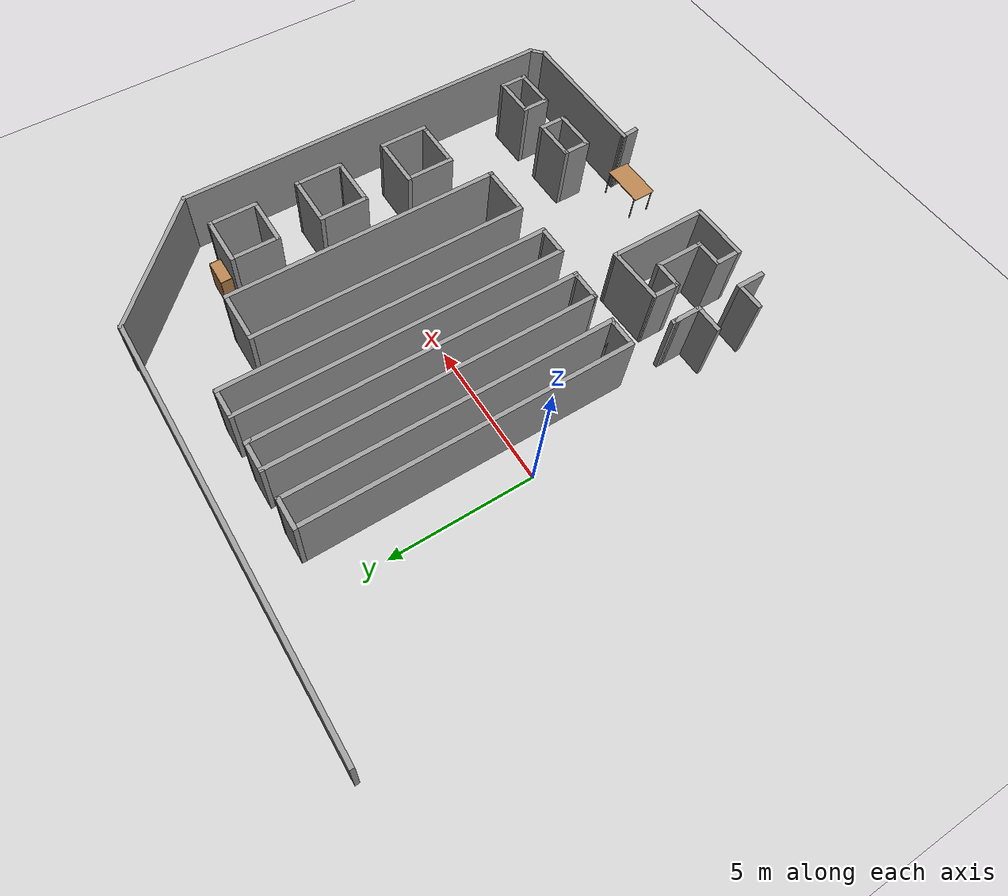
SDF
<sdf version="1.7">
 <world name="default">
  <model name="ground_plane">
   <static>1</static>
   <link name="link">
    <collision name="collision">
     <geometry><plane><normal>0 0 1</normal><size>100 100</size></plane></geometry>
     <surface><friction><ode><mu>100</mu><mu2>50</mu2></ode></friction></surface>
    </collision>
    <visual name="visual">
     <cast_shadows>0</cast_shadows>
     <geometry><plane><normal>0 0 1</normal><size>100 100</size></plane></geometry>
     <material>
      <script><uri>file://media/materials/scripts/gazebo.material</uri><name>Gazebo/Grey</name></script>
     </material>
    </visual>
   </link>
  </model>
  <model name="walls_market_g1">
   <pose>-0.66394 -0.44435 0 0 -0 0</pose>
   <link name="Wall_100">
    <collision name="Wall_100_Collision">
     <geometry><box><size>1.85 0.15 2.5</size></box></geometry>
     <pose>0 0 1.25 0 -0 0</pose>
    </collision>
    <visual name="Wall_100_Visual">
     <pose>0 0 1.25 0 -0 0</pose>
     <geometry><box><size>1.85 0.15 2.5</size></box></geometry>
     <material>
      <script><uri>file://media/materials/scripts/gazebo.material</uri><name>Gazebo/Grey</name></script>
      <ambient>1 1 1 1</ambient>
     </material>
     <meta><layer>0</layer></meta>
    </visual>
    <pose>11.6346 -1.28134 0 0 -0 3.14159</pose>
   </link>
   <link name="Wall_126">
    <collision name="Wall_126_Collision">
     <geometry><box><size>1 0.15 2.5</size></box></geometry>
     <pose>0 0 1.25 0 -0 0</pose>
    </collision>
    <visual name="Wall_126_Visual">
     <pose>0 0 1.25 0 -0 0</pose>
     <geometry><box><size>1 0.15 2.5</size></box></geometry>
     <material>
      <script><uri>file://media/materials/scripts/gazebo.material</uri><name>Gazebo/Grey</name></script>
      <ambient>1 1 1 1</ambient>
     </material>
     <meta><layer>0</layer></meta>
    </visual>
    <pose>1.87656 -8.15566 0 0 -0 1.5708</pose>
   </link>
   <link name="Wall_127">
    <collision name="Wall_127_Collision">
     <geometry><box><size>1 0.15 2.5</size></box></geometry>
     <pose>0 0 1.25 0 -0 0</pose>
    </collision>
    <visual name="Wall_127_Visual">
     <pose>0 0 1.25 0 -0 0</pose>
     <geometry><box><size>1 0.15 2.5</size></box></geometry>
     <material>
      <script><uri>file://media/materials/scripts/gazebo.material</uri><name>Gazebo/Grey</name></script>
      <ambient>1 1 1 1</ambient>
     </material>
     <meta><layer>0</layer></meta>
    </visual>
    <pose>1.45156 -7.73066 0 0 -0 3.14159</pose>
   </link>
   <link name="Wall_129">
    <collision name="Wall_129_Collision">
     <geometry><box><size>1 0.15 2.5</size></box></geometry>
     <pose>0 0 1.25 0 -0 0</pose>
    </collision>
    <visual name="Wall_129_Visual">
     <pose>0 0 1.25 0 -0 0</pose>
     <geometry><box><size>1 0.15 2.5</size></box></geometry>
     <material>
      <script><uri>file://media/materials/scripts/gazebo.material</uri><name>Gazebo/Grey</name></script>
      <ambient>1 1 1 1</ambient>
     </material>
     <meta><layer>0</layer></meta>
    </visual>
    <pose>1.45156 -6.13066 0 0 -0 0</pose>
   </link>
   <link name="Wall_130">
    <collision name="Wall_130_Collision">
     <geometry><box><size>1 0.15 2.5</size></box></geometry>
     <pose>0 0 1.25 0 -0 0</pose>
    </collision>
    <visual name="Wall_130_Visual">
     <pose>0 0 1.25 0 -0 0</pose>
     <geometry><box><size>1 0.15 2.5</size></box></geometry>
     <material>
      <script><uri>file://media/materials/scripts/gazebo.material</uri><name>Gazebo/Grey</name></script>
      <ambient>1 1 1 1</ambient>
     </material>
     <meta><layer>0</layer></meta>
    </visual>
    <pose>1.87656 -5.70566 0 0 -0 1.5708</pose>
   </link>
   <link name="Wall_131">
    <collision name="Wall_131_Collision">
     <geometry><box><size>0.25751 0.15 2.5</size></box></geometry>
     <pose>0 0 1.25 0 -0 0</pose>
    </collision>
    <visual name="Wall_131_Visual">
     <pose>0 0 1.25 0 -0 0</pose>
     <geometry><box><size>0.25751 0.15 2.5</size></box></geometry>
     <material>
      <script><uri>file://media/materials/scripts/gazebo.material</uri><name>Gazebo/Grey</name></script>
      <ambient>1 1 1 1</ambient>
     </material>
     <meta><layer>0</layer></meta>
    </visual>
    <pose>1.87731 -5.22691 0 0 -0 1.55684</pose>
   </link>
   <link name="Wall_134">
    <collision name="Wall_134_Collision">
     <geometry><box><size>3.5 0.15 2.5</size></box></geometry>
     <pose>0 0 1.25 0 -0 0</pose>
    </collision>
    <visual name="Wall_134_Visual">
     <pose>0 0 1.25 0 -0 0</pose>
     <geometry><box><size>3.5 0.15 2.5</size></box></geometry>
     <material>
      <script><uri>file://media/materials/scripts/gazebo.material</uri><name>Gazebo/Grey</name></script>
      <ambient>1 1 1 1</ambient>
     </material>
     <meta><layer>0</layer></meta>
    </visual>
    <pose>4.76456 -6.89416 0 0 -0 -1.5708</pose>
   </link>
   <link name="Wall_135">
    <collision name="Wall_135_Collision">
     <geometry><box><size>2 0.15 2.5</size></box></geometry>
     <pose>0 0 1.25 0 -0 0</pose>
    </collision>
    <visual name="Wall_135_Visual">
     <pose>0 0 1.25 0 -0 0</pose>
     <geometry><box><size>2 0.15 2.5</size></box></geometry>
     <material>
      <script><uri>file://media/materials/scripts/gazebo.material</uri><name>Gazebo/Grey</name></script>
      <ambient>1 1 1 1</ambient>
     </material>
     <meta><layer>0</layer></meta>
    </visual>
    <pose>3.83956 -8.56916 0 0 -0 3.14159</pose>
   </link>
   <link name="Wall_136">
    <collision name="Wall_136_Collision">
     <geometry><box><size>1 0.15 2.5</size></box></geometry>
     <pose>0 0 1.25 0 -0 0</pose>
    </collision>
    <visual name="Wall_136_Visual">
     <pose>0 0 1.25 0 -0 0</pose>
     <geometry><box><size>1 0.15 2.5</size></box></geometry>
     <material>
      <script><uri>file://media/materials/scripts/gazebo.material</uri><name>Gazebo/Grey</name></script>
      <ambient>1 1 1 1</ambient>
     </material>
     <meta><layer>0</layer></meta>
    </visual>
    <pose>2.91456 -8.14416 0 0 -0 1.5708</pose>
   </link>
   <link name="Wall_137">
    <collision name="Wall_137_Collision">
     <geometry><box><size>1 0.15 2.5</size></box></geometry>
     <pose>0 0 1.25 0 -0 0</pose>
    </collision>
    <visual name="Wall_137_Visual">
     <pose>0 0 1.25 0 -0 0</pose>
     <geometry><box><size>1 0.15 2.5</size></box></geometry>
     <material>
      <script><uri>file://media/materials/scripts/gazebo.material</uri><name>Gazebo/Grey</name></script>
      <ambient>1 1 1 1</ambient>
     </material>
     <meta><layer>0</layer></meta>
    </visual>
    <pose>3.33956 -7.71916 0 0 -0 0</pose>
   </link>
   <link name="Wall_138">
    <collision name="Wall_138_Collision">
     <geometry><box><size>1.75 0.15 2.5</size></box></geometry>
     <pose>0 0 1.25 0 -0 0</pose>
    </collision>
    <visual name="Wall_138_Visual">
     <pose>0 0 1.25 0 -0 0</pose>
     <geometry><box><size>1.75 0.15 2.5</size></box></geometry>
     <material>
      <script><uri>file://media/materials/scripts/gazebo.material</uri><name>Gazebo/Grey</name></script>
      <ambient>1 1 1 1</ambient>
     </material>
     <meta><layer>0</layer></meta>
    </visual>
    <pose>3.76456 -6.91916 0 0 -0 1.5708</pose>
   </link>
   <link name="Wall_139">
    <collision name="Wall_139_Collision">
     <geometry><box><size>1 0.15 2.5</size></box></geometry>
     <pose>0 0 1.25 0 -0 0</pose>
    </collision>
    <visual name="Wall_139_Visual">
     <pose>0 0 1.25 0 -0 0</pose>
     <geometry><box><size>1 0.15 2.5</size></box></geometry>
     <material>
      <script><uri>file://media/materials/scripts/gazebo.material</uri><name>Gazebo/Grey</name></script>
      <ambient>1 1 1 1</ambient>
     </material>
     <meta><layer>0</layer></meta>
    </visual>
    <pose>3.33956 -6.11916 0 0 -0 3.14159</pose>
   </link>
   <link name="Wall_140">
    <collision name="Wall_140_Collision">
     <geometry><box><size>1 0.15 2.5</size></box></geometry>
     <pose>0 0 1.25 0 -0 0</pose>
    </collision>
    <visual name="Wall_140_Visual">
     <pose>0 0 1.25 0 -0 0</pose>
     <geometry><box><size>1 0.15 2.5</size></box></geometry>
     <material>
      <script><uri>file://media/materials/scripts/gazebo.material</uri><name>Gazebo/Grey</name></script>
      <ambient>1 1 1 1</ambient>
     </material>
     <meta><layer>0</layer></meta>
    </visual>
    <pose>2.91456 -5.69416 0 0 -0 1.5708</pose>
   </link>
   <link name="Wall_141">
    <collision name="Wall_141_Collision">
     <geometry><box><size>2.00068 0.15 2.5</size></box></geometry>
     <pose>0 0 1.25 0 -0 0</pose>
    </collision>
    <visual name="Wall_141_Visual">
     <pose>0 0 1.25 0 -0 0</pose>
     <geometry><box><size>2.00068 0.15 2.5</size></box></geometry>
     <material>
      <script><uri>file://media/materials/scripts/gazebo.material</uri><name>Gazebo/Grey</name></script>
      <ambient>1 1 1 1</ambient>
     </material>
     <meta><layer>0</layer></meta>
    </visual>
    <pose>3.83956 -5.24416 0 0 -0 0.02702</pose>
   </link>
   <link name="Wall_143">
    <collision name="Wall_143_Collision">
     <geometry><box><size>1 0.15 2.5</size></box></geometry>
     <pose>0 0 1.25 0 -0 0</pose>
    </collision>
    <visual name="Wall_143_Visual">
     <pose>0 0 1.25 0 -0 0</pose>
     <geometry><box><size>1 0.15 2.5</size></box></geometry>
     <material>
      <script><uri>file://media/materials/scripts/gazebo.material</uri><name>Gazebo/Grey</name></script>
      <ambient>1 1 1 1</ambient>
     </material>
     <meta><layer>0</layer></meta>
    </visual>
    <pose>9.0747 -6.80653 0 0 -0 -1.5708</pose>
   </link>
   <link name="Wall_144">
    <collision name="Wall_144_Collision">
     <geometry><box><size>1.5 0.15 2.5</size></box></geometry>
     <pose>0 0 1.25 0 -0 0</pose>
    </collision>
    <visual name="Wall_144_Visual">
     <pose>0 0 1.25 0 -0 0</pose>
     <geometry><box><size>1.5 0.15 2.5</size></box></geometry>
     <material>
      <script><uri>file://media/materials/scripts/gazebo.material</uri><name>Gazebo/Grey</name></script>
      <ambient>1 1 1 1</ambient>
     </material>
     <meta><layer>0</layer></meta>
    </visual>
    <pose>9.7497 -7.23153 0 0 -0 0</pose>
   </link>
   <link name="Wall_145">
    <collision name="Wall_145_Collision">
     <geometry><box><size>1 0.15 2.5</size></box></geometry>
     <pose>0 0 1.25 0 -0 0</pose>
    </collision>
    <visual name="Wall_145_Visual">
     <pose>0 0 1.25 0 -0 0</pose>
     <geometry><box><size>1 0.15 2.5</size></box></geometry>
     <material>
      <script><uri>file://media/materials/scripts/gazebo.material</uri><name>Gazebo/Grey</name></script>
      <ambient>1 1 1 1</ambient>
     </material>
     <meta><layer>0</layer></meta>
    </visual>
    <pose>10.4247 -6.80653 0 0 -0 1.5708</pose>
   </link>
   <link name="Wall_146">
    <collision name="Wall_146_Collision">
     <geometry><box><size>1.5 0.15 2.5</size></box></geometry>
     <pose>0 0 1.25 0 -0 0</pose>
    </collision>
    <visual name="Wall_146_Visual">
     <pose>0 0 1.25 0 -0 0</pose>
     <geometry><box><size>1.5 0.15 2.5</size></box></geometry>
     <material>
      <script><uri>file://media/materials/scripts/gazebo.material</uri><name>Gazebo/Grey</name></script>
      <ambient>1 1 1 1</ambient>
     </material>
     <meta><layer>0</layer></meta>
    </visual>
    <pose>9.7497 -6.38153 0 0 -0 3.14159</pose>
   </link>
   <link name="Wall_148">
    <collision name="Wall_148_Collision">
     <geometry><box><size>1 0.15 2.5</size></box></geometry>
     <pose>0 0 1.25 0 -0 0</pose>
    </collision>
    <visual name="Wall_148_Visual">
     <pose>0 0 1.25 0 -0 0</pose>
     <geometry><box><size>1 0.15 2.5</size></box></geometry>
     <material>
      <script><uri>file://media/materials/scripts/gazebo.material</uri><name>Gazebo/Grey</name></script>
      <ambient>1 1 1 1</ambient>
     </material>
     <meta><layer>0</layer></meta>
    </visual>
    <pose>11.4321 -6.77611 0 0 -0 -1.5708</pose>
   </link>
   <link name="Wall_149">
    <collision name="Wall_149_Collision">
     <geometry><box><size>1.5 0.15 2.5</size></box></geometry>
     <pose>0 0 1.25 0 -0 0</pose>
    </collision>
    <visual name="Wall_149_Visual">
     <pose>0 0 1.25 0 -0 0</pose>
     <geometry><box><size>1.5 0.15 2.5</size></box></geometry>
     <material>
      <script><uri>file://media/materials/scripts/gazebo.material</uri><name>Gazebo/Grey</name></script>
      <ambient>1 1 1 1</ambient>
     </material>
     <meta><layer>0</layer></meta>
    </visual>
    <pose>12.1071 -7.20111 0 0 -0 0</pose>
   </link>
   <link name="Wall_150">
    <collision name="Wall_150_Collision">
     <geometry><box><size>1 0.15 2.5</size></box></geometry>
     <pose>0 0 1.25 0 -0 0</pose>
    </collision>
    <visual name="Wall_150_Visual">
     <pose>0 0 1.25 0 -0 0</pose>
     <geometry><box><size>1 0.15 2.5</size></box></geometry>
     <material>
      <script><uri>file://media/materials/scripts/gazebo.material</uri><name>Gazebo/Grey</name></script>
      <ambient>1 1 1 1</ambient>
     </material>
     <meta><layer>0</layer></meta>
    </visual>
    <pose>12.7821 -6.77611 0 0 -0 1.5708</pose>
   </link>
   <link name="Wall_151">
    <collision name="Wall_151_Collision">
     <geometry><box><size>1.5 0.15 2.5</size></box></geometry>
     <pose>0 0 1.25 0 -0 0</pose>
    </collision>
    <visual name="Wall_151_Visual">
     <pose>0 0 1.25 0 -0 0</pose>
     <geometry><box><size>1.5 0.15 2.5</size></box></geometry>
     <material>
      <script><uri>file://media/materials/scripts/gazebo.material</uri><name>Gazebo/Grey</name></script>
      <ambient>1 1 1 1</ambient>
     </material>
     <meta><layer>0</layer></meta>
    </visual>
    <pose>12.1071 -6.35111 0 0 -0 3.14159</pose>
   </link>
   <link name="Wall_3">
    <collision name="Wall_3_Collision">
     <geometry><box><size>0.655995 0.15 2.5</size></box></geometry>
     <pose>0 0 1.25 0 -0 0</pose>
    </collision>
    <visual name="Wall_3_Visual">
     <pose>0 0 1.25 0 -0 0</pose>
     <geometry><box><size>0.655995 0.15 2.5</size></box></geometry>
     <material>
      <script><uri>file://media/materials/scripts/gazebo.material</uri><name>Gazebo/Grey</name></script>
      <ambient>1 1 1 1</ambient>
     </material>
     <meta><layer>0</layer></meta>
    </visual>
    <pose>8.69574 -8.76505 0 0 -0 1.66227</pose>
   </link>
   <link name="Wall_4">
    <collision name="Wall_4_Collision">
     <geometry><box><size>4.89183 0.15 2.5</size></box></geometry>
     <pose>0 0 1.25 0 -0 0</pose>
    </collision>
    <visual name="Wall_4_Visual">
     <pose>0 0 1.25 0 -0 0</pose>
     <geometry><box><size>4.89183 0.15 2.5</size></box></geometry>
     <material>
      <script><uri>file://media/materials/scripts/gazebo.material</uri><name>Gazebo/Grey</name></script>
      <ambient>1 1 1 1</ambient>
     </material>
     <meta><layer>0</layer></meta>
    </visual>
    <pose>11.0435 -8.52467 0 0 -0 -0.004878</pose>
   </link>
   <link name="Wall_5">
    <collision name="Wall_5_Collision">
     <geometry><box><size>0.657294 0.15 2.5</size></box></geometry>
     <pose>0 0 1.25 0 -0 0</pose>
    </collision>
    <visual name="Wall_5_Visual">
     <pose>0 0 1.25 0 -0 0</pose>
     <geometry><box><size>0.657294 0.15 2.5</size></box></geometry>
     <material>
      <script><uri>file://media/materials/scripts/gazebo.material</uri><name>Gazebo/Grey</name></script>
      <ambient>1 1 1 1</ambient>
     </material>
     <meta><layer>0</layer></meta>
    </visual>
    <pose>13.5994 -8.36276 0 0 -0 0.753151</pose>
   </link>
   <link name="Wall_59">
    <collision name="Wall_59_Collision">
     <geometry><box><size>11.25 0.15 2.5</size></box></geometry>
     <pose>0 0 1.25 0 -0 0</pose>
    </collision>
    <visual name="Wall_59_Visual">
     <pose>0 0 1.25 0 -0 0</pose>
     <geometry><box><size>11.25 0.15 2.5</size></box></geometry>
     <material>
      <script><uri>file://media/materials/scripts/gazebo.material</uri><name>Gazebo/Grey</name></script>
      <ambient>1 1 1 1</ambient>
     </material>
     <meta><layer>0</layer></meta>
    </visual>
    <pose>1.91714 1.93118 0 0 -0 -1.5708</pose>
   </link>
   <link name="Wall_6">
    <collision name="Wall_6_Collision">
     <geometry><box><size>13.75 0.15 2.5</size></box></geometry>
     <pose>0 0 1.25 0 -0 0</pose>
    </collision>
    <visual name="Wall_6_Visual">
     <pose>0 0 1.25 0 -0 0</pose>
     <geometry><box><size>13.75 0.15 2.5</size></box></geometry>
     <material>
      <script><uri>file://media/materials/scripts/gazebo.material</uri><name>Gazebo/Grey</name></script>
      <ambient>1 1 1 1</ambient>
     </material>
     <meta><layer>0</layer></meta>
    </visual>
    <pose>13.7845 -1.38928 0 0 -0 1.5708</pose>
   </link>
   <link name="Wall_60">
    <collision name="Wall_60_Collision">
     <geometry><box><size>1 0.15 2.5</size></box></geometry>
     <pose>0 0 1.25 0 -0 0</pose>
    </collision>
    <visual name="Wall_60_Visual">
     <pose>0 0 1.25 0 -0 0</pose>
     <geometry><box><size>1 0.15 2.5</size></box></geometry>
     <material>
      <script><uri>file://media/materials/scripts/gazebo.material</uri><name>Gazebo/Grey</name></script>
      <ambient>1 1 1 1</ambient>
     </material>
     <meta><layer>0</layer></meta>
    </visual>
    <pose>2.34214 -3.61882 0 0 -0 0</pose>
   </link>
   <link name="Wall_61">
    <collision name="Wall_61_Collision">
     <geometry><box><size>0.25 0.15 2.5</size></box></geometry>
     <pose>0 0 1.25 0 -0 0</pose>
    </collision>
    <visual name="Wall_61_Visual">
     <pose>0 0 1.25 0 -0 0</pose>
     <geometry><box><size>0.25 0.15 2.5</size></box></geometry>
     <material>
      <script><uri>file://media/materials/scripts/gazebo.material</uri><name>Gazebo/Grey</name></script>
      <ambient>1 1 1 1</ambient>
     </material>
     <meta><layer>0</layer></meta>
    </visual>
    <pose>2.81714 -3.61882 0 0 -0 0</pose>
   </link>
   <link name="Wall_62">
    <collision name="Wall_62_Collision">
     <geometry><box><size>11.25 0.15 2.5</size></box></geometry>
     <pose>0 0 1.25 0 -0 0</pose>
    </collision>
    <visual name="Wall_62_Visual">
     <pose>0 0 1.25 0 -0 0</pose>
     <geometry><box><size>11.25 0.15 2.5</size></box></geometry>
     <material>
      <script><uri>file://media/materials/scripts/gazebo.material</uri><name>Gazebo/Grey</name></script>
      <ambient>1 1 1 1</ambient>
     </material>
     <meta><layer>0</layer></meta>
    </visual>
    <pose>2.86714 1.93118 0 0 -0 1.5708</pose>
   </link>
   <link name="Wall_63">
    <collision name="Wall_63_Collision">
     <geometry><box><size>1.1 0.15 2.5</size></box></geometry>
     <pose>0 0 1.25 0 -0 0</pose>
    </collision>
    <visual name="Wall_63_Visual">
     <pose>0 0 1.25 0 -0 0</pose>
     <geometry><box><size>1.1 0.15 2.5</size></box></geometry>
     <material>
      <script><uri>file://media/materials/scripts/gazebo.material</uri><name>Gazebo/Grey</name></script>
      <ambient>1 1 1 1</ambient>
     </material>
     <meta><layer>0</layer></meta>
    </visual>
    <pose>2.39214 7.48118 0 0 -0 3.14159</pose>
   </link>
   <link name="Wall_65">
    <collision name="Wall_65_Collision">
     <geometry><box><size>11.25 0.15 2.5</size></box></geometry>
     <pose>0 0 1.25 0 -0 0</pose>
    </collision>
    <visual name="Wall_65_Visual">
     <pose>0 0 1.25 0 -0 0</pose>
     <geometry><box><size>11.25 0.15 2.5</size></box></geometry>
     <material>
      <script><uri>file://media/materials/scripts/gazebo.material</uri><name>Gazebo/Grey</name></script>
      <ambient>1 1 1 1</ambient>
     </material>
     <meta><layer>0</layer></meta>
    </visual>
    <pose>3.85854 1.94867 0 0 -0 -1.5708</pose>
   </link>
   <link name="Wall_66">
    <collision name="Wall_66_Collision">
     <geometry><box><size>0.25 0.15 2.5</size></box></geometry>
     <pose>0 0 1.25 0 -0 0</pose>
    </collision>
    <visual name="Wall_66_Visual">
     <pose>0 0 1.25 0 -0 0</pose>
     <geometry><box><size>0.25 0.15 2.5</size></box></geometry>
     <material>
      <script><uri>file://media/materials/scripts/gazebo.material</uri><name>Gazebo/Grey</name></script>
      <ambient>1 1 1 1</ambient>
     </material>
     <meta><layer>0</layer></meta>
    </visual>
    <pose>3.85854 -3.65133 0 0 -0 -1.5708</pose>
   </link>
   <link name="Wall_67">
    <collision name="Wall_67_Collision">
     <geometry><box><size>1 0.15 2.5</size></box></geometry>
     <pose>0 0 1.25 0 -0 0</pose>
    </collision>
    <visual name="Wall_67_Visual">
     <pose>0 0 1.25 0 -0 0</pose>
     <geometry><box><size>1 0.15 2.5</size></box></geometry>
     <material>
      <script><uri>file://media/materials/scripts/gazebo.material</uri><name>Gazebo/Grey</name></script>
      <ambient>1 1 1 1</ambient>
     </material>
     <meta><layer>0</layer></meta>
    </visual>
    <pose>4.28354 -3.70133 0 0 -0 0</pose>
   </link>
   <link name="Wall_68">
    <collision name="Wall_68_Collision">
     <geometry><box><size>0.25 0.15 2.5</size></box></geometry>
     <pose>0 0 1.25 0 -0 0</pose>
    </collision>
    <visual name="Wall_68_Visual">
     <pose>0 0 1.25 0 -0 0</pose>
     <geometry><box><size>0.25 0.15 2.5</size></box></geometry>
     <material>
      <script><uri>file://media/materials/scripts/gazebo.material</uri><name>Gazebo/Grey</name></script>
      <ambient>1 1 1 1</ambient>
     </material>
     <meta><layer>0</layer></meta>
    </visual>
    <pose>4.75854 -3.70133 0 0 -0 0</pose>
   </link>
   <link name="Wall_69">
    <collision name="Wall_69_Collision">
     <geometry><box><size>11.25 0.15 2.5</size></box></geometry>
     <pose>0 0 1.25 0 -0 0</pose>
    </collision>
    <visual name="Wall_69_Visual">
     <pose>0 0 1.25 0 -0 0</pose>
     <geometry><box><size>11.25 0.15 2.5</size></box></geometry>
     <material>
      <script><uri>file://media/materials/scripts/gazebo.material</uri><name>Gazebo/Grey</name></script>
      <ambient>1 1 1 1</ambient>
     </material>
     <meta><layer>0</layer></meta>
    </visual>
    <pose>4.80854 1.84867 0 0 -0 1.5708</pose>
   </link>
   <link name="Wall_7">
    <collision name="Wall_7_Collision">
     <geometry><box><size>5.25 0.15 2.5</size></box></geometry>
     <pose>0 0 1.25 0 -0 0</pose>
    </collision>
    <visual name="Wall_7_Visual">
     <pose>0 0 1.25 0 -0 0</pose>
     <geometry><box><size>5.25 0.15 2.5</size></box></geometry>
     <material>
      <script><uri>file://media/materials/scripts/gazebo.material</uri><name>Gazebo/Grey</name></script>
      <ambient>1 1 1 1</ambient>
     </material>
     <meta><layer>0</layer></meta>
    </visual>
    <pose>11.9814 7.21384 0 0 -0 2.35619</pose>
   </link>
   <link name="Wall_70">
    <collision name="Wall_70_Collision">
     <geometry><box><size>0.25 0.15 2.5</size></box></geometry>
     <pose>0 0 1.25 0 -0 0</pose>
    </collision>
    <visual name="Wall_70_Visual">
     <pose>0 0 1.25 0 -0 0</pose>
     <geometry><box><size>0.25 0.15 2.5</size></box></geometry>
     <material>
      <script><uri>file://media/materials/scripts/gazebo.material</uri><name>Gazebo/Grey</name></script>
      <ambient>1 1 1 1</ambient>
     </material>
     <meta><layer>0</layer></meta>
    </visual>
    <pose>4.80854 7.44867 0 0 -0 1.5708</pose>
   </link>
   <link name="Wall_71">
    <collision name="Wall_71_Collision">
     <geometry><box><size>1.1 0.15 2.5</size></box></geometry>
     <pose>0 0 1.25 0 -0 0</pose>
    </collision>
    <visual name="Wall_71_Visual">
     <pose>0 0 1.25 0 -0 0</pose>
     <geometry><box><size>1.1 0.15 2.5</size></box></geometry>
     <material>
      <script><uri>file://media/materials/scripts/gazebo.material</uri><name>Gazebo/Grey</name></script>
      <ambient>1 1 1 1</ambient>
     </material>
     <meta><layer>0</layer></meta>
    </visual>
    <pose>4.33354 7.49867 0 0 -0 3.14159</pose>
   </link>
   <link name="Wall_73">
    <collision name="Wall_73_Collision">
     <geometry><box><size>11.5 0.15 2.5</size></box></geometry>
     <pose>0 0 1.25 0 -0 0</pose>
    </collision>
    <visual name="Wall_73_Visual">
     <pose>0 0 1.25 0 -0 0</pose>
     <geometry><box><size>11.5 0.15 2.5</size></box></geometry>
     <material>
      <script><uri>file://media/materials/scripts/gazebo.material</uri><name>Gazebo/Grey</name></script>
      <ambient>1 1 1 1</ambient>
     </material>
     <meta><layer>0</layer></meta>
    </visual>
    <pose>5.78245 1.84116 0 0 -0 -1.5708</pose>
   </link>
   <link name="Wall_74">
    <collision name="Wall_74_Collision">
     <geometry><box><size>1 0.15 2.5</size></box></geometry>
     <pose>0 0 1.25 0 -0 0</pose>
    </collision>
    <visual name="Wall_74_Visual">
     <pose>0 0 1.25 0 -0 0</pose>
     <geometry><box><size>1 0.15 2.5</size></box></geometry>
     <material>
      <script><uri>file://media/materials/scripts/gazebo.material</uri><name>Gazebo/Grey</name></script>
      <ambient>1 1 1 1</ambient>
     </material>
     <meta><layer>0</layer></meta>
    </visual>
    <pose>6.20745 -3.83384 0 0 -0 0</pose>
   </link>
   <link name="Wall_75">
    <collision name="Wall_75_Collision">
     <geometry><box><size>0.25 0.15 2.5</size></box></geometry>
     <pose>0 0 1.25 0 -0 0</pose>
    </collision>
    <visual name="Wall_75_Visual">
     <pose>0 0 1.25 0 -0 0</pose>
     <geometry><box><size>0.25 0.15 2.5</size></box></geometry>
     <material>
      <script><uri>file://media/materials/scripts/gazebo.material</uri><name>Gazebo/Grey</name></script>
      <ambient>1 1 1 1</ambient>
     </material>
     <meta><layer>0</layer></meta>
    </visual>
    <pose>6.68245 -3.83384 0 0 -0 0</pose>
   </link>
   <link name="Wall_76">
    <collision name="Wall_76_Collision">
     <geometry><box><size>11.5 0.15 2.5</size></box></geometry>
     <pose>0 0 1.25 0 -0 0</pose>
    </collision>
    <visual name="Wall_76_Visual">
     <pose>0 0 1.25 0 -0 0</pose>
     <geometry><box><size>11.5 0.15 2.5</size></box></geometry>
     <material>
      <script><uri>file://media/materials/scripts/gazebo.material</uri><name>Gazebo/Grey</name></script>
      <ambient>1 1 1 1</ambient>
     </material>
     <meta><layer>0</layer></meta>
    </visual>
    <pose>6.73245 1.84116 0 0 -0 1.5708</pose>
   </link>
   <link name="Wall_77">
    <collision name="Wall_77_Collision">
     <geometry><box><size>1.1 0.15 2.5</size></box></geometry>
     <pose>0 0 1.25 0 -0 0</pose>
    </collision>
    <visual name="Wall_77_Visual">
     <pose>0 0 1.25 0 -0 0</pose>
     <geometry><box><size>1.1 0.15 2.5</size></box></geometry>
     <material>
      <script><uri>file://media/materials/scripts/gazebo.material</uri><name>Gazebo/Grey</name></script>
      <ambient>1 1 1 1</ambient>
     </material>
     <meta><layer>0</layer></meta>
    </visual>
    <pose>6.25745 7.51616 0 0 -0 3.14159</pose>
   </link>
   <link name="Wall_79">
    <collision name="Wall_79_Collision">
     <geometry><box><size>9.75 0.15 2.5</size></box></geometry>
     <pose>0 0 1.25 0 -0 0</pose>
    </collision>
    <visual name="Wall_79_Visual">
     <pose>0 0 1.25 0 -0 0</pose>
     <geometry><box><size>9.75 0.15 2.5</size></box></geometry>
     <material>
      <script><uri>file://media/materials/scripts/gazebo.material</uri><name>Gazebo/Grey</name></script>
      <ambient>1 1 1 1</ambient>
     </material>
     <meta><layer>0</layer></meta>
    </visual>
    <pose>7.86377 1.08959 0 0 -0 -1.5708</pose>
   </link>
   <link name="Wall_8">
    <collision name="Wall_8_Collision">
     <geometry><box><size>14.25 0.15 2.5</size></box></geometry>
     <pose>0 0 1.25 0 -0 0</pose>
    </collision>
    <visual name="Wall_8_Visual">
     <pose>0 0 1.25 0 -0 0</pose>
     <geometry><box><size>14.25 0.15 2.5</size></box></geometry>
     <material>
      <script><uri>file://media/materials/scripts/gazebo.material</uri><name>Gazebo/Grey</name></script>
      <ambient>1 1 1 1</ambient>
     </material>
     <meta><layer>0</layer></meta>
    </visual>
    <pose>3.12825 9.01697 0 0 -0 3.14159</pose>
   </link>
   <link name="Wall_80">
    <collision name="Wall_80_Collision">
     <geometry><box><size>1.75 0.15 2.5</size></box></geometry>
     <pose>0 0 1.25 0 -0 0</pose>
    </collision>
    <visual name="Wall_80_Visual">
     <pose>0 0 1.25 0 -0 0</pose>
     <geometry><box><size>1.75 0.15 2.5</size></box></geometry>
     <material>
      <script><uri>file://media/materials/scripts/gazebo.material</uri><name>Gazebo/Grey</name></script>
      <ambient>1 1 1 1</ambient>
     </material>
     <meta><layer>0</layer></meta>
    </visual>
    <pose>8.66376 -3.71041 0 0 -0 0</pose>
   </link>
   <link name="Wall_81">
    <collision name="Wall_81_Collision">
     <geometry><box><size>0.25 0.15 2.5</size></box></geometry>
     <pose>0 0 1.25 0 -0 0</pose>
    </collision>
    <visual name="Wall_81_Visual">
     <pose>0 0 1.25 0 -0 0</pose>
     <geometry><box><size>0.25 0.15 2.5</size></box></geometry>
     <material>
      <script><uri>file://media/materials/scripts/gazebo.material</uri><name>Gazebo/Grey</name></script>
      <ambient>1 1 1 1</ambient>
     </material>
     <meta><layer>0</layer></meta>
    </visual>
    <pose>9.51377 -3.71041 0 0 -0 0</pose>
   </link>
   <link name="Wall_82">
    <collision name="Wall_82_Collision">
     <geometry><box><size>9.75 0.15 2.5</size></box></geometry>
     <pose>0 0 1.25 0 -0 0</pose>
    </collision>
    <visual name="Wall_82_Visual">
     <pose>0 0 1.25 0 -0 0</pose>
     <geometry><box><size>9.75 0.15 2.5</size></box></geometry>
     <material>
      <script><uri>file://media/materials/scripts/gazebo.material</uri><name>Gazebo/Grey</name></script>
      <ambient>1 1 1 1</ambient>
     </material>
     <meta><layer>0</layer></meta>
    </visual>
    <pose>9.56377 1.08959 0 0 -0 1.5708</pose>
   </link>
   <link name="Wall_83">
    <collision name="Wall_83_Collision">
     <geometry><box><size>1.85 0.15 2.5</size></box></geometry>
     <pose>0 0 1.25 0 -0 0</pose>
    </collision>
    <visual name="Wall_83_Visual">
     <pose>0 0 1.25 0 -0 0</pose>
     <geometry><box><size>1.85 0.15 2.5</size></box></geometry>
     <material>
      <script><uri>file://media/materials/scripts/gazebo.material</uri><name>Gazebo/Grey</name></script>
      <ambient>1 1 1 1</ambient>
     </material>
     <meta><layer>0</layer></meta>
    </visual>
    <pose>8.71377 5.88959 0 0 -0 3.14159</pose>
   </link>
   <link name="Wall_85">
    <collision name="Wall_85_Collision">
     <geometry><box><size>1.75 0.15 2.5</size></box></geometry>
     <pose>0 0 1.25 0 -0 0</pose>
    </collision>
    <visual name="Wall_85_Visual">
     <pose>0 0 1.25 0 -0 0</pose>
     <geometry><box><size>1.75 0.15 2.5</size></box></geometry>
     <material>
      <script><uri>file://media/materials/scripts/gazebo.material</uri><name>Gazebo/Grey</name></script>
      <ambient>1 1 1 1</ambient>
     </material>
     <meta><layer>0</layer></meta>
    </visual>
    <pose>10.7846 4.32002 0 0 -0 -1.5708</pose>
   </link>
   <link name="Wall_86">
    <collision name="Wall_86_Collision">
     <geometry><box><size>1.75 0.15 2.5</size></box></geometry>
     <pose>0 0 1.25 0 -0 0</pose>
    </collision>
    <visual name="Wall_86_Visual">
     <pose>0 0 1.25 0 -0 0</pose>
     <geometry><box><size>1.75 0.15 2.5</size></box></geometry>
     <material>
      <script><uri>file://media/materials/scripts/gazebo.material</uri><name>Gazebo/Grey</name></script>
      <ambient>1 1 1 1</ambient>
     </material>
     <meta><layer>0</layer></meta>
    </visual>
    <pose>11.5846 3.52002 0 0 -0 0</pose>
   </link>
   <link name="Wall_87">
    <collision name="Wall_87_Collision">
     <geometry><box><size>1.75 0.15 2.5</size></box></geometry>
     <pose>0 0 1.25 0 -0 0</pose>
    </collision>
    <visual name="Wall_87_Visual">
     <pose>0 0 1.25 0 -0 0</pose>
     <geometry><box><size>1.75 0.15 2.5</size></box></geometry>
     <material>
      <script><uri>file://media/materials/scripts/gazebo.material</uri><name>Gazebo/Grey</name></script>
      <ambient>1 1 1 1</ambient>
     </material>
     <meta><layer>0</layer></meta>
    </visual>
    <pose>12.3846 4.32002 0 0 -0 1.5708</pose>
   </link>
   <link name="Wall_88">
    <collision name="Wall_88_Collision">
     <geometry><box><size>1.75 0.15 2.5</size></box></geometry>
     <pose>0 0 1.25 0 -0 0</pose>
    </collision>
    <visual name="Wall_88_Visual">
     <pose>0 0 1.25 0 -0 0</pose>
     <geometry><box><size>1.75 0.15 2.5</size></box></geometry>
     <material>
      <script><uri>file://media/materials/scripts/gazebo.material</uri><name>Gazebo/Grey</name></script>
      <ambient>1 1 1 1</ambient>
     </material>
     <meta><layer>0</layer></meta>
    </visual>
    <pose>11.5846 5.12002 0 0 -0 3.14159</pose>
   </link>
   <link name="Wall_90">
    <collision name="Wall_90_Collision">
     <geometry><box><size>1.75 0.15 2.5</size></box></geometry>
     <pose>0 0 1.25 0 -0 0</pose>
    </collision>
    <visual name="Wall_90_Visual">
     <pose>0 0 1.25 0 -0 0</pose>
     <geometry><box><size>1.75 0.15 2.5</size></box></geometry>
     <material>
      <script><uri>file://media/materials/scripts/gazebo.material</uri><name>Gazebo/Grey</name></script>
      <ambient>1 1 1 1</ambient>
     </material>
     <meta><layer>0</layer></meta>
    </visual>
    <pose>10.7671 1.17181 0 0 -0 -1.5708</pose>
   </link>
   <link name="Wall_91">
    <collision name="Wall_91_Collision">
     <geometry><box><size>1.75 0.15 2.5</size></box></geometry>
     <pose>0 0 1.25 0 -0 0</pose>
    </collision>
    <visual name="Wall_91_Visual">
     <pose>0 0 1.25 0 -0 0</pose>
     <geometry><box><size>1.75 0.15 2.5</size></box></geometry>
     <material>
      <script><uri>file://media/materials/scripts/gazebo.material</uri><name>Gazebo/Grey</name></script>
      <ambient>1 1 1 1</ambient>
     </material>
     <meta><layer>0</layer></meta>
    </visual>
    <pose>11.5671 0.371811 0 0 -0 0</pose>
   </link>
   <link name="Wall_92">
    <collision name="Wall_92_Collision">
     <geometry><box><size>0.25 0.15 2.5</size></box></geometry>
     <pose>0 0 1.25 0 -0 0</pose>
    </collision>
    <visual name="Wall_92_Visual">
     <pose>0 0 1.25 0 -0 0</pose>
     <geometry><box><size>0.25 0.15 2.5</size></box></geometry>
     <material>
      <script><uri>file://media/materials/scripts/gazebo.material</uri><name>Gazebo/Grey</name></script>
      <ambient>1 1 1 1</ambient>
     </material>
     <meta><layer>0</layer></meta>
    </visual>
    <pose>12.4171 0.371811 0 0 -0 0</pose>
   </link>
   <link name="Wall_93">
    <collision name="Wall_93_Collision">
     <geometry><box><size>1.75 0.15 2.5</size></box></geometry>
     <pose>0 0 1.25 0 -0 0</pose>
    </collision>
    <visual name="Wall_93_Visual">
     <pose>0 0 1.25 0 -0 0</pose>
     <geometry><box><size>1.75 0.15 2.5</size></box></geometry>
     <material>
      <script><uri>file://media/materials/scripts/gazebo.material</uri><name>Gazebo/Grey</name></script>
      <ambient>1 1 1 1</ambient>
     </material>
     <meta><layer>0</layer></meta>
    </visual>
    <pose>12.4671 1.17181 0 0 -0 1.5708</pose>
   </link>
   <link name="Wall_94">
    <collision name="Wall_94_Collision">
     <geometry><box><size>1.85 0.15 2.5</size></box></geometry>
     <pose>0 0 1.25 0 -0 0</pose>
    </collision>
    <visual name="Wall_94_Visual">
     <pose>0 0 1.25 0 -0 0</pose>
     <geometry><box><size>1.85 0.15 2.5</size></box></geometry>
     <material>
      <script><uri>file://media/materials/scripts/gazebo.material</uri><name>Gazebo/Grey</name></script>
      <ambient>1 1 1 1</ambient>
     </material>
     <meta><layer>0</layer></meta>
    </visual>
    <pose>11.6171 1.97181 0 0 -0 3.14159</pose>
   </link>
   <link name="Wall_96">
    <collision name="Wall_96_Collision">
     <geometry><box><size>1.75 0.15 2.5</size></box></geometry>
     <pose>0 0 1.25 0 -0 0</pose>
    </collision>
    <visual name="Wall_96_Visual">
     <pose>0 0 1.25 0 -0 0</pose>
     <geometry><box><size>1.75 0.15 2.5</size></box></geometry>
     <material>
      <script><uri>file://media/materials/scripts/gazebo.material</uri><name>Gazebo/Grey</name></script>
      <ambient>1 1 1 1</ambient>
     </material>
     <meta><layer>0</layer></meta>
    </visual>
    <pose>10.7846 -2.08134 0 0 -0 -1.5708</pose>
   </link>
   <link name="Wall_97">
    <collision name="Wall_97_Collision">
     <geometry><box><size>1.75 0.15 2.5</size></box></geometry>
     <pose>0 0 1.25 0 -0 0</pose>
    </collision>
    <visual name="Wall_97_Visual">
     <pose>0 0 1.25 0 -0 0</pose>
     <geometry><box><size>1.75 0.15 2.5</size></box></geometry>
     <material>
      <script><uri>file://media/materials/scripts/gazebo.material</uri><name>Gazebo/Grey</name></script>
      <ambient>1 1 1 1</ambient>
     </material>
     <meta><layer>0</layer></meta>
    </visual>
    <pose>11.5846 -2.88134 0 0 -0 0</pose>
   </link>
   <link name="Wall_98">
    <collision name="Wall_98_Collision">
     <geometry><box><size>0.25 0.15 2.5</size></box></geometry>
     <pose>0 0 1.25 0 -0 0</pose>
    </collision>
    <visual name="Wall_98_Visual">
     <pose>0 0 1.25 0 -0 0</pose>
     <geometry><box><size>0.25 0.15 2.5</size></box></geometry>
     <material>
      <script><uri>file://media/materials/scripts/gazebo.material</uri><name>Gazebo/Grey</name></script>
      <ambient>1 1 1 1</ambient>
     </material>
     <meta><layer>0</layer></meta>
    </visual>
    <pose>12.4346 -2.88134 0 0 -0 0</pose>
   </link>
   <link name="Wall_99">
    <collision name="Wall_99_Collision">
     <geometry><box><size>1.75 0.15 2.5</size></box></geometry>
     <pose>0 0 1.25 0 -0 0</pose>
    </collision>
    <visual name="Wall_99_Visual">
     <pose>0 0 1.25 0 -0 0</pose>
     <geometry><box><size>1.75 0.15 2.5</size></box></geometry>
     <material>
      <script><uri>file://media/materials/scripts/gazebo.material</uri><name>Gazebo/Grey</name></script>
      <ambient>1 1 1 1</ambient>
     </material>
     <meta><layer>0</layer></meta>
    </visual>
    <pose>12.4846 -2.08134 0 0 -0 1.5708</pose>
   </link>
   <static>1</static>
  </model>
  <model name="bookshelf">
   <static>1</static>
   <link name="link">
    <inertial><mass>1</mass></inertial>
    <collision name="back">
     <pose>0 0.005 0.6 0 -0 0</pose>
     <geometry><box><size>0.9 0.01 1.2</size></box></geometry>
    </collision>
    <visual name="visual1">
     <pose>0 0.005 0.6 0 -0 0</pose>
     <geometry><box><size>0.9 0.01 1.2</size></box></geometry>
     <material>
      <script><uri>file://media/materials/scripts/gazebo.material</uri><name>Gazebo/Wood</name></script>
     </material>
    </visual>
    <collision name="left_side">
     <pose>0.45 -0.195 0.6 0 -0 0</pose>
     <geometry><box><size>0.02 0.4 1.2</size></box></geometry>
    </collision>
    <visual name="visual2">
     <pose>0.45 -0.195 0.6 0 -0 0</pose>
     <geometry><box><size>0.02 0.4 1.2</size></box></geometry>
     <material>
      <script><uri>file://media/materials/scripts/gazebo.material</uri><name>Gazebo/Wood</name></script>
     </material>
    </visual>
    <collision name="right_side">
     <pose>-0.45 -0.195 0.6 0 -0 0</pose>
     <geometry><box><size>0.02 0.4 1.2</size></box></geometry>
    </collision>
    <visual name="visual3">
     <pose>-0.45 -0.195 0.6 0 -0 0</pose>
     <geometry><box><size>0.02 0.4 1.2</size></box></geometry>
     <material>
      <script><uri>file://media/materials/scripts/gazebo.material</uri><name>Gazebo/Wood</name></script>
     </material>
    </visual>
    <collision name="bottom">
     <pose>0 -0.195 0.03 0 -0 0</pose>
     <geometry><box><size>0.88 0.4 0.06</size></box></geometry>
    </collision>
    <visual name="visual4">
     <pose>0 -0.195 0.03 0 -0 0</pose>
     <geometry><box><size>0.88 0.4 0.06</size></box></geometry>
     <material>
      <script><uri>file://media/materials/scripts/gazebo.material</uri><name>Gazebo/Wood</name></script>
     </material>
    </visual>
    <collision name="top">
     <pose>0 -0.195 1.19 0 -0 0</pose>
     <geometry><box><size>0.88 0.4 0.02</size></box></geometry>
    </collision>
    <visual name="visual5">
     <pose>0 -0.195 1.19 0 -0 0</pose>
     <geometry><box><size>0.88 0.4 0.02</size></box></geometry>
     <material>
      <script><uri>file://media/materials/scripts/gazebo.material</uri><name>Gazebo/Wood</name></script>
     </material>
    </visual>
    <collision name="low_shelf">
     <pose>0 -0.195 0.43 0 -0 0</pose>
     <geometry><box><size>0.88 0.4 0.02</size></box></geometry>
    </collision>
    <visual name="visual6">
     <pose>0 -0.195 0.43 0 -0 0</pose>
     <geometry><box><size>0.88 0.4 0.02</size></box></geometry>
     <material>
      <script><uri>file://media/materials/scripts/gazebo.material</uri><name>Gazebo/Wood</name></script>
     </material>
    </visual>
    <collision name="high_shelf">
     <pose>0 -0.195 0.8 0 -0 0</pose>
     <geometry><box><size>0.88 0.4 0.02</size></box></geometry>
    </collision>
    <visual name="visual7">
     <pose>0 -0.195 0.8 0 -0 0</pose>
     <geometry><box><size>0.88 0.4 0.02</size></box></geometry>
     <material>
      <script><uri>file://media/materials/scripts/gazebo.material</uri><name>Gazebo/Wood</name></script>
     </material>
    </visual>
   </link>
   <pose>10.8316 5.15352 -0 0 -0 0</pose>
  </model>
  <model name="table">
   <static>1</static>
   <link name="link">
    <collision name="surface">
     <pose>0 0 1 0 -0 0</pose>
     <geometry><box><size>1.5 0.8 0.03</size></box></geometry>
     <surface><friction><ode><mu>0.6</mu><mu2>0.6</mu2></ode></friction></surface>
    </collision>
    <visual name="visual1">
     <pose>0 0 1 0 -0 0</pose>
     <geometry><box><size>1.5 0.8 0.03</size></box></geometry>
     <material>
      <script><uri>file://media/materials/scripts/gazebo.material</uri><name>Gazebo/Wood</name></script>
     </material>
    </visual>
    <collision name="front_left_leg">
     <pose>0.68 0.38 0.5 0 -0 0</pose>
     <geometry><cylinder><radius>0.02</radius><length>1</length></cylinder></geometry>
    </collision>
    <visual name="front_left_leg">
     <pose>0.68 0.38 0.5 0 -0 0</pose>
     <geometry><cylinder><radius>0.02</radius><length>1</length></cylinder></geometry>
     <material>
      <script><uri>file://media/materials/scripts/gazebo.material</uri><name>Gazebo/Grey</name></script>
     </material>
    </visual>
    <collision name="front_right_leg">
     <pose>0.68 -0.38 0.5 0 -0 0</pose>
     <geometry><cylinder><radius>0.02</radius><length>1</length></cylinder></geometry>
    </collision>
    <visual name="front_right_leg">
     <pose>0.68 -0.38 0.5 0 -0 0</pose>
     <geometry><cylinder><radius>0.02</radius><length>1</length></cylinder></geometry>
     <material>
      <script><uri>file://media/materials/scripts/gazebo.material</uri><name>Gazebo/Grey</name></script>
     </material>
    </visual>
    <collision name="back_right_leg">
     <pose>-0.68 -0.38 0.5 0 -0 0</pose>
     <geometry><cylinder><radius>0.02</radius><length>1</length></cylinder></geometry>
    </collision>
    <visual name="back_right_leg">
     <pose>-0.68 -0.38 0.5 0 -0 0</pose>
     <geometry><cylinder><radius>0.02</radius><length>1</length></cylinder></geometry>
     <material>
      <script><uri>file://media/materials/scripts/gazebo.material</uri><name>Gazebo/Grey</name></script>
     </material>
    </visual>
    <collision name="back_left_leg">
     <pose>-0.68 0.38 0.5 0 -0 0</pose>
     <geometry><cylinder><radius>0.02</radius><length>1</length></cylinder></geometry>
    </collision>
    <visual name="back_left_leg">
     <pose>-0.68 0.38 0.5 0 -0 0</pose>
     <geometry><cylinder><radius>0.02</radius><length>1</length></cylinder></geometry>
     <material>
      <script><uri>file://media/materials/scripts/gazebo.material</uri><name>Gazebo/Grey</name></script>
     </material>
    </visual>
   </link>
   <pose>7.15703 -8.95146 0 0 -0 0</pose>
  </model>
 </world>
</sdf>
